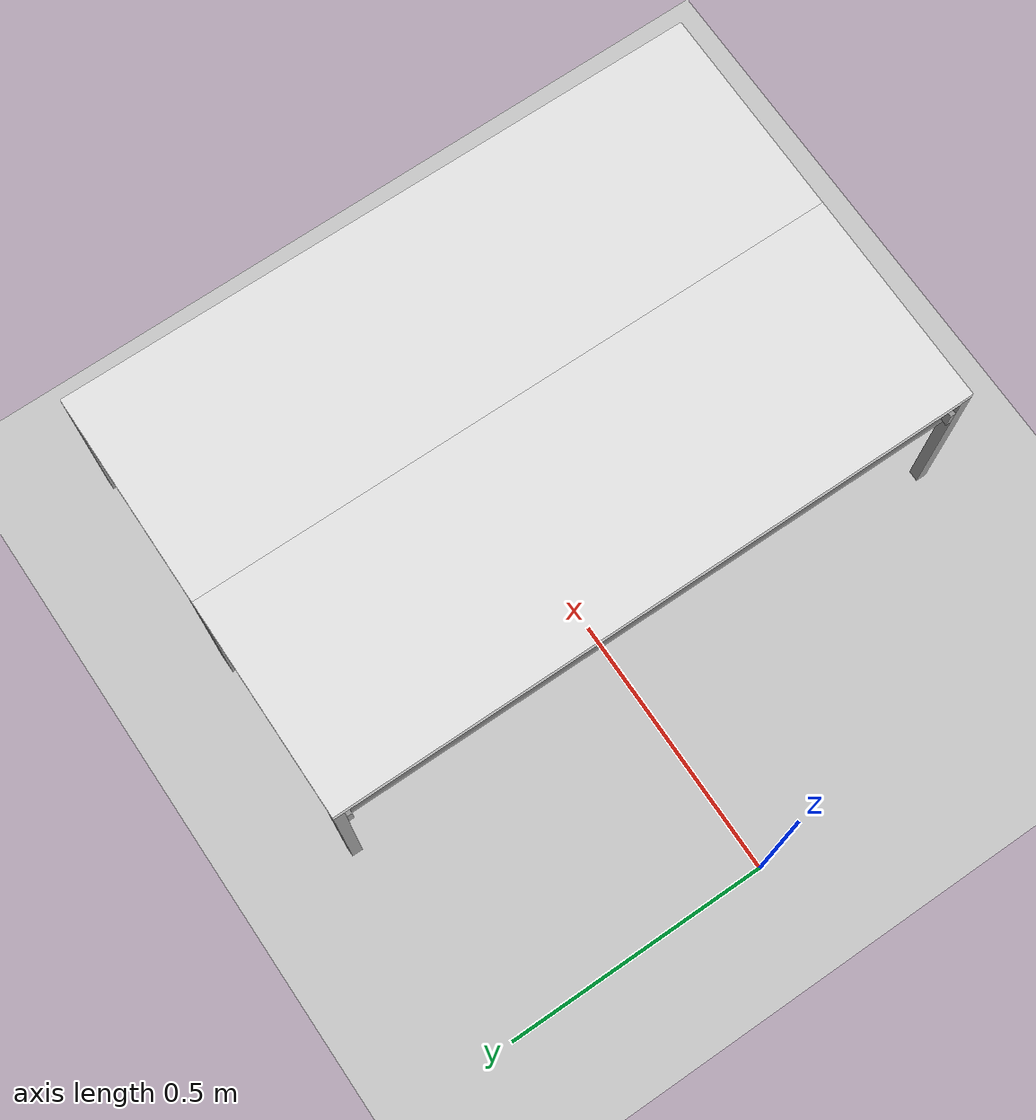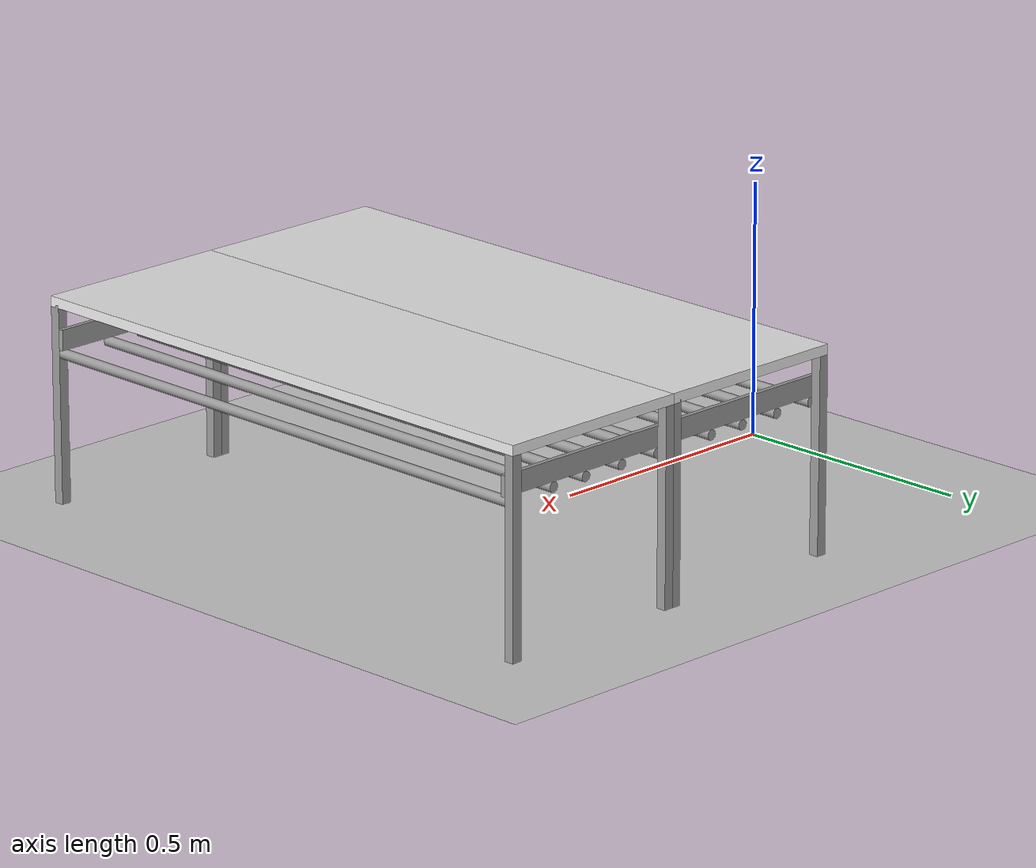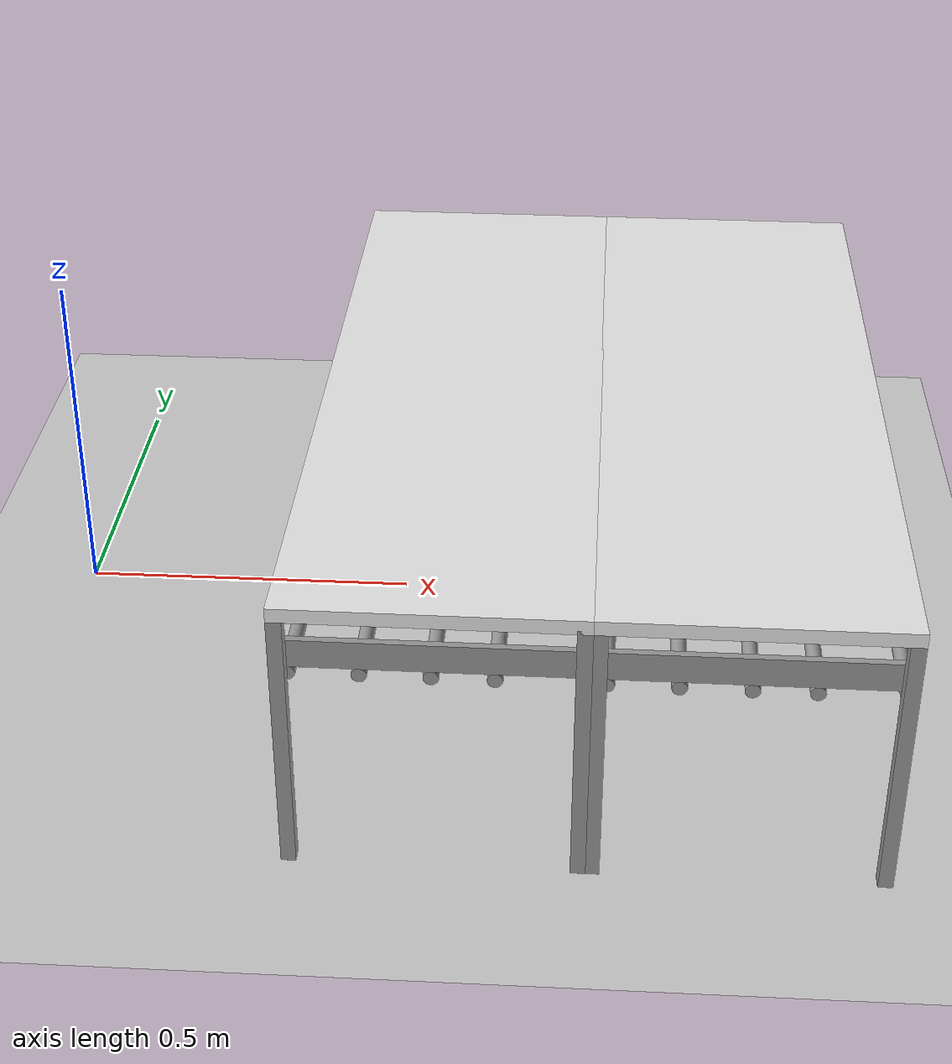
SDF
<sdf version="1.6">
 <world name="default">
  <physics name="default_physics" default="0" type="ode">
   <max_step_size>0.001</max_step_size>
   <real_time_factor>1</real_time_factor>
   <real_time_update_rate>1000</real_time_update_rate>
  </physics>
  <light name="sun" type="directional">
   <pose>0 0 10 0 -0 0</pose>
   <diffuse>0.8 0.8 0.8 1</diffuse>
   <specular>0.2 0.2 0.2 1</specular>
   <attenuation>
    <range>1000</range>
    <constant>0.9</constant>
    <linear>0.01</linear>
    <quadratic>0.001</quadratic>
   </attenuation>
   <direction>-0.5 0.1 -0.9</direction>
  </light>
  <model name="ground_plane">
   <static>1</static>
   <link name="link">
    <collision name="collision">
     <geometry><plane><normal>0 0 1</normal><size>100 100</size></plane></geometry>
     <surface><friction><ode><mu>100</mu><mu2>50</mu2></ode></friction></surface>
    </collision>
    <visual name="visual">
     <cast_shadows>0</cast_shadows>
     <geometry><plane><normal>0 0 1</normal><size>100 100</size></plane></geometry>
     <material>
      <script><uri>file://media/materials/scripts/gazebo.material</uri><name>Gazebo/Grey</name></script>
     </material>
    </visual>
   </link>
  </model>
  <gravity>0 0 -9.8</gravity>
  <magnetic_field>6e-06 2.3e-05 -4.2e-05</magnetic_field>
  <atmosphere type="adiabatic"/>
  <scene><ambient>0.4 0.4 0.4 1</ambient><background>0.7 0.7 0.7 1</background><shadows>1</shadows></scene>
  <spherical_coordinates>
   <surface_model>EARTH_WGS84</surface_model>
   <latitude_deg>0</latitude_deg>
   <longitude_deg>0</longitude_deg>
   <elevation>0</elevation>
   <heading_deg>0</heading_deg>
  </spherical_coordinates>
  <light name="user_spot_light_0" type="spot">
   <pose>0.56955 0.18199 1 0 -0 0</pose>
   <diffuse>0.5 0.5 0.5 1</diffuse>
   <specular>0.1 0.1 0.1 1</specular>
   <direction>0 0 -1</direction>
   <attenuation>
    <range>20</range>
    <constant>0.5</constant>
    <linear>0.01</linear>
    <quadratic>0.001</quadratic>
   </attenuation>
   <cast_shadows>0</cast_shadows>
   <spot><inner_angle>0.6</inner_angle><outer_angle>1</outer_angle><falloff>1</falloff></spot>
  </light>
  <light name="user_spot_light_1" type="spot">
   <pose>-0.076149 -0.230905 1 0 -0 0</pose>
   <diffuse>0.5 0.5 0.5 1</diffuse>
   <specular>0.1 0.1 0.1 1</specular>
   <direction>0 0 -1</direction>
   <attenuation>
    <range>20</range>
    <constant>0.5</constant>
    <linear>0.01</linear>
    <quadratic>0.001</quadratic>
   </attenuation>
   <cast_shadows>0</cast_shadows>
   <spot><inner_angle>0.6</inner_angle><outer_angle>1</outer_angle><falloff>1</falloff></spot>
  </light>
  <model name="wrc_long_table">
   <static>1</static>
   <link name="link">
    <inertial><mass>1</mass></inertial>
    <collision name="top">
     <pose>0 0 0.39 0 -0 0</pose>
     <geometry><box><size>1.2 0.4 0.02</size></box></geometry>
    </collision>
    <visual name="top_v">
     <pose>0 0 0.39 0 -0 0</pose>
     <geometry><box><size>1.2 0.4 0.02</size></box></geometry>
     <material>
      <script><uri>file://media/materials/scripts/gazebo.material</uri><name>Gazebo/White</name></script>
     </material>
    </visual>
    <collision name="leg1">
     <pose>0.59 0.19 0.185 0 -0 0</pose>
     <geometry><box><size>0.02 0.02 0.4</size></box></geometry>
    </collision>
    <visual name="leg1_v">
     <pose>0.59 0.19 0.185 0 -0 0</pose>
     <geometry><box><size>0.02 0.02 0.4</size></box></geometry>
     <material>
      <script><uri>file://media/materials/scripts/gazebo.material</uri><name>Gazebo/Gray</name></script>
     </material>
    </visual>
    <collision name="leg2">
     <pose>-0.59 0.19 0.185 0 -0 0</pose>
     <geometry><box><size>0.02 0.02 0.4</size></box></geometry>
    </collision>
    <visual name="leg2_v">
     <pose>-0.59 0.19 0.185 0 -0 0</pose>
     <geometry><box><size>0.02 0.02 0.4</size></box></geometry>
     <material>
      <script><uri>file://media/materials/scripts/gazebo.material</uri><name>Gazebo/Gray</name></script>
     </material>
    </visual>
    <collision name="leg3">
     <pose>0.59 -0.19 0.185 0 -0 0</pose>
     <geometry><box><size>0.02 0.02 0.4</size></box></geometry>
    </collision>
    <visual name="leg3_v">
     <pose>0.59 -0.19 0.185 0 -0 0</pose>
     <geometry><box><size>0.02 0.02 0.4</size></box></geometry>
     <material>
      <script><uri>file://media/materials/scripts/gazebo.material</uri><name>Gazebo/Gray</name></script>
     </material>
    </visual>
    <collision name="leg4">
     <pose>-0.59 -0.19 0.185 0 -0 0</pose>
     <geometry><box><size>0.02 0.02 0.4</size></box></geometry>
    </collision>
    <visual name="leg4_v">
     <pose>-0.59 -0.19 0.185 0 -0 0</pose>
     <geometry><box><size>0.02 0.02 0.4</size></box></geometry>
     <material>
      <script><uri>file://media/materials/scripts/gazebo.material</uri><name>Gazebo/Gray</name></script>
     </material>
    </visual>
    <collision name="side_panel1">
     <pose>0.575 0 0.32 0 -0 0</pose>
     <geometry><box><size>0.01 0.4 0.04</size></box></geometry>
    </collision>
    <visual name="side_panel1_v">
     <pose>0.575 0 0.32 0 -0 0</pose>
     <geometry><box><size>0.01 0.4 0.04</size></box></geometry>
     <material>
      <script><uri>file://media/materials/scripts/gazebo.material</uri><name>Gazebo/Gray</name></script>
     </material>
    </visual>
    <collision name="side_panel2">
     <pose>-0.575 0 0.32 0 -0 0</pose>
     <geometry><box><size>0.01 0.4 0.04</size></box></geometry>
    </collision>
    <visual name="side_panel2_v">
     <pose>-0.575 0 0.32 0 -0 0</pose>
     <geometry><box><size>0.01 0.4 0.04</size></box></geometry>
     <material>
      <script><uri>file://media/materials/scripts/gazebo.material</uri><name>Gazebo/Gray</name></script>
     </material>
    </visual>
    <collision name="bar1">
     <pose>0 0.2 0.29 0 1.57 0</pose>
     <geometry><cylinder><radius>0.01</radius><length>1.16</length></cylinder></geometry>
    </collision>
    <visual name="bar1_v">
     <pose>0 0.19 0.29 0 1.57 0</pose>
     <geometry><cylinder><radius>0.01</radius><length>1.16</length></cylinder></geometry>
     <material>
      <script><uri>file://media/materials/scripts/gazebo.material</uri><name>Gazebo/Gray</name></script>
     </material>
    </visual>
    <collision name="bar2">
     <pose>0 0.08 0.29 0 1.57 0</pose>
     <geometry><cylinder><radius>0.01</radius><length>1.16</length></cylinder></geometry>
    </collision>
    <visual name="bar2_v">
     <pose>0 0.08 0.29 0 1.57 0</pose>
     <geometry><cylinder><radius>0.01</radius><length>1.16</length></cylinder></geometry>
     <material>
      <script><uri>file://media/materials/scripts/gazebo.material</uri><name>Gazebo/Gray</name></script>
     </material>
    </visual>
    <collision name="bar3">
     <pose>0 0 0.29 0 1.57 0</pose>
     <geometry><cylinder><radius>0.01</radius><length>1.16</length></cylinder></geometry>
    </collision>
    <visual name="bar3_v">
     <pose>0 0 0.29 0 1.57 0</pose>
     <geometry><cylinder><radius>0.01</radius><length>1.16</length></cylinder></geometry>
     <material>
      <script><uri>file://media/materials/scripts/gazebo.material</uri><name>Gazebo/Gray</name></script>
     </material>
    </visual>
    <collision name="bar4">
     <pose>0 -0.08 0.29 0 1.57 0</pose>
     <geometry><cylinder><radius>0.01</radius><length>1.16</length></cylinder></geometry>
    </collision>
    <visual name="bar4_v">
     <pose>0 -0.09 0.29 0 1.57 0</pose>
     <geometry><cylinder><radius>0.01</radius><length>1.16</length></cylinder></geometry>
     <material>
      <script><uri>file://media/materials/scripts/gazebo.material</uri><name>Gazebo/Gray</name></script>
     </material>
    </visual>
    <collision name="bar5">
     <pose>0 -0.18 0.29 0 1.57 0</pose>
     <geometry><cylinder><radius>0.01</radius><length>1.16</length></cylinder></geometry>
    </collision>
    <visual name="bar5_v">
     <pose>0 -0.18 0.29 0 1.57 0</pose>
     <geometry><cylinder><radius>0.01</radius><length>1.16</length></cylinder></geometry>
     <material>
      <script><uri>file://media/materials/scripts/gazebo.material</uri><name>Gazebo/Gray</name></script>
     </material>
    </visual>
   </link>
   <pose>0.59751 -0.051474 0 0 0 -1.57634</pose>
  </model>
  <model name="wrc_long_table_clone">
   <static>1</static>
   <link name="link">
    <inertial><mass>1</mass></inertial>
    <collision name="top">
     <pose>0 0 0.39 0 -0 0</pose>
     <geometry><box><size>1.2 0.4 0.02</size></box></geometry>
    </collision>
    <visual name="top_v">
     <pose>0 0 0.39 0 -0 0</pose>
     <geometry><box><size>1.2 0.4 0.02</size></box></geometry>
     <material>
      <script><uri>file://media/materials/scripts/gazebo.material</uri><name>Gazebo/White</name></script>
     </material>
    </visual>
    <collision name="leg1">
     <pose>0.59 0.19 0.185 0 -0 0</pose>
     <geometry><box><size>0.02 0.02 0.4</size></box></geometry>
    </collision>
    <visual name="leg1_v">
     <pose>0.59 0.19 0.185 0 -0 0</pose>
     <geometry><box><size>0.02 0.02 0.4</size></box></geometry>
     <material>
      <script><uri>file://media/materials/scripts/gazebo.material</uri><name>Gazebo/Gray</name></script>
     </material>
    </visual>
    <collision name="leg2">
     <pose>-0.59 0.19 0.185 0 -0 0</pose>
     <geometry><box><size>0.02 0.02 0.4</size></box></geometry>
    </collision>
    <visual name="leg2_v">
     <pose>-0.59 0.19 0.185 0 -0 0</pose>
     <geometry><box><size>0.02 0.02 0.4</size></box></geometry>
     <material>
      <script><uri>file://media/materials/scripts/gazebo.material</uri><name>Gazebo/Gray</name></script>
     </material>
    </visual>
    <collision name="leg3">
     <pose>0.59 -0.19 0.185 0 -0 0</pose>
     <geometry><box><size>0.02 0.02 0.4</size></box></geometry>
    </collision>
    <visual name="leg3_v">
     <pose>0.59 -0.19 0.185 0 -0 0</pose>
     <geometry><box><size>0.02 0.02 0.4</size></box></geometry>
     <material>
      <script><uri>file://media/materials/scripts/gazebo.material</uri><name>Gazebo/Gray</name></script>
     </material>
    </visual>
    <collision name="leg4">
     <pose>-0.59 -0.19 0.185 0 -0 0</pose>
     <geometry><box><size>0.02 0.02 0.4</size></box></geometry>
    </collision>
    <visual name="leg4_v">
     <pose>-0.59 -0.19 0.185 0 -0 0</pose>
     <geometry><box><size>0.02 0.02 0.4</size></box></geometry>
     <material>
      <script><uri>file://media/materials/scripts/gazebo.material</uri><name>Gazebo/Gray</name></script>
     </material>
    </visual>
    <collision name="side_panel1">
     <pose>0.575 0 0.32 0 -0 0</pose>
     <geometry><box><size>0.01 0.4 0.04</size></box></geometry>
    </collision>
    <visual name="side_panel1_v">
     <pose>0.575 0 0.32 0 -0 0</pose>
     <geometry><box><size>0.01 0.4 0.04</size></box></geometry>
     <material>
      <script><uri>file://media/materials/scripts/gazebo.material</uri><name>Gazebo/Gray</name></script>
     </material>
    </visual>
    <collision name="side_panel2">
     <pose>-0.575 0 0.32 0 -0 0</pose>
     <geometry><box><size>0.01 0.4 0.04</size></box></geometry>
    </collision>
    <visual name="side_panel2_v">
     <pose>-0.575 0 0.32 0 -0 0</pose>
     <geometry><box><size>0.01 0.4 0.04</size></box></geometry>
     <material>
      <script><uri>file://media/materials/scripts/gazebo.material</uri><name>Gazebo/Gray</name></script>
     </material>
    </visual>
    <collision name="bar1">
     <pose>0 0.2 0.29 0 1.57 0</pose>
     <geometry><cylinder><radius>0.01</radius><length>1.16</length></cylinder></geometry>
    </collision>
    <visual name="bar1_v">
     <pose>0 0.19 0.29 0 1.57 0</pose>
     <geometry><cylinder><radius>0.01</radius><length>1.16</length></cylinder></geometry>
     <material>
      <script><uri>file://media/materials/scripts/gazebo.material</uri><name>Gazebo/Gray</name></script>
     </material>
    </visual>
    <collision name="bar2">
     <pose>0 0.08 0.29 0 1.57 0</pose>
     <geometry><cylinder><radius>0.01</radius><length>1.16</length></cylinder></geometry>
    </collision>
    <visual name="bar2_v">
     <pose>0 0.08 0.29 0 1.57 0</pose>
     <geometry><cylinder><radius>0.01</radius><length>1.16</length></cylinder></geometry>
     <material>
      <script><uri>file://media/materials/scripts/gazebo.material</uri><name>Gazebo/Gray</name></script>
     </material>
    </visual>
    <collision name="bar3">
     <pose>0 0 0.29 0 1.57 0</pose>
     <geometry><cylinder><radius>0.01</radius><length>1.16</length></cylinder></geometry>
    </collision>
    <visual name="bar3_v">
     <pose>0 0 0.29 0 1.57 0</pose>
     <geometry><cylinder><radius>0.01</radius><length>1.16</length></cylinder></geometry>
     <material>
      <script><uri>file://media/materials/scripts/gazebo.material</uri><name>Gazebo/Gray</name></script>
     </material>
    </visual>
    <collision name="bar4">
     <pose>0 -0.08 0.29 0 1.57 0</pose>
     <geometry><cylinder><radius>0.01</radius><length>1.16</length></cylinder></geometry>
    </collision>
    <visual name="bar4_v">
     <pose>0 -0.09 0.29 0 1.57 0</pose>
     <geometry><cylinder><radius>0.01</radius><length>1.16</length></cylinder></geometry>
     <material>
      <script><uri>file://media/materials/scripts/gazebo.material</uri><name>Gazebo/Gray</name></script>
     </material>
    </visual>
    <collision name="bar5">
     <pose>0 -0.18 0.29 0 1.57 0</pose>
     <geometry><cylinder><radius>0.01</radius><length>1.16</length></cylinder></geometry>
    </collision>
    <visual name="bar5_v">
     <pose>0 -0.18 0.29 0 1.57 0</pose>
     <geometry><cylinder><radius>0.01</radius><length>1.16</length></cylinder></geometry>
     <material>
      <script><uri>file://media/materials/scripts/gazebo.material</uri><name>Gazebo/Gray</name></script>
     </material>
    </visual>
   </link>
   <pose>0.995638 -0.053585 0 0 0 -1.57634</pose>
  </model>
 </world>
</sdf>
